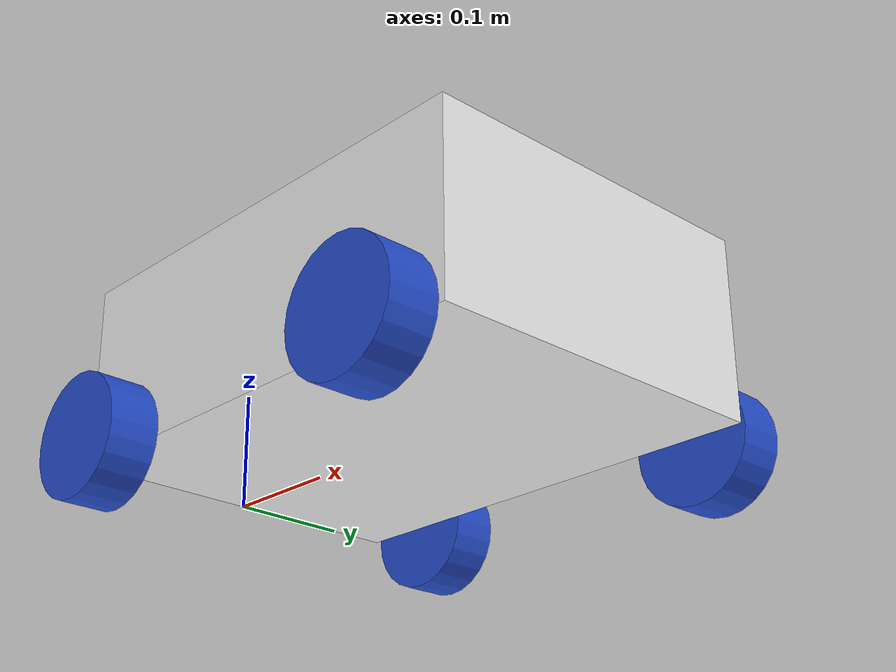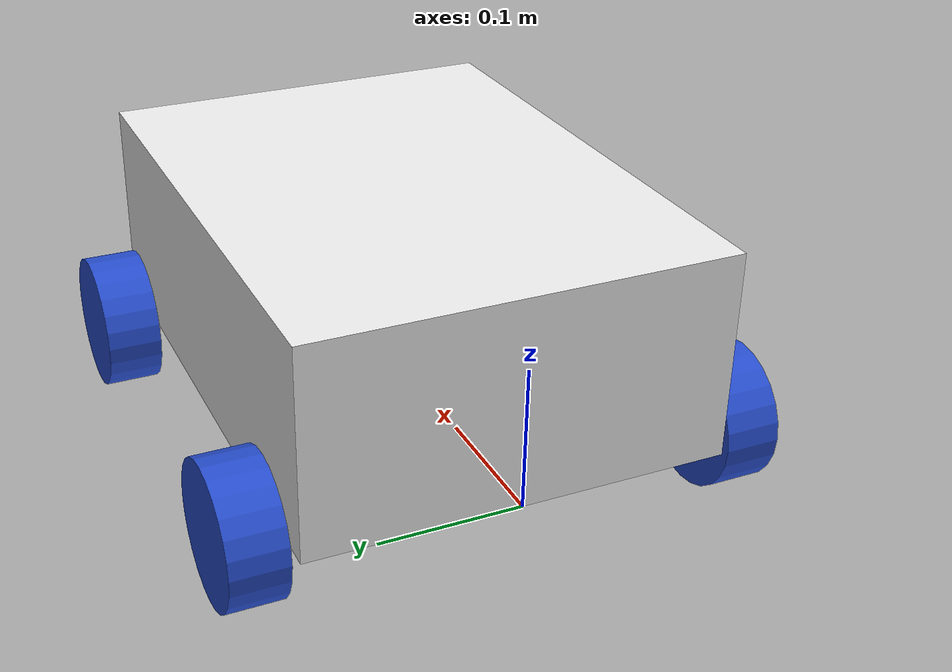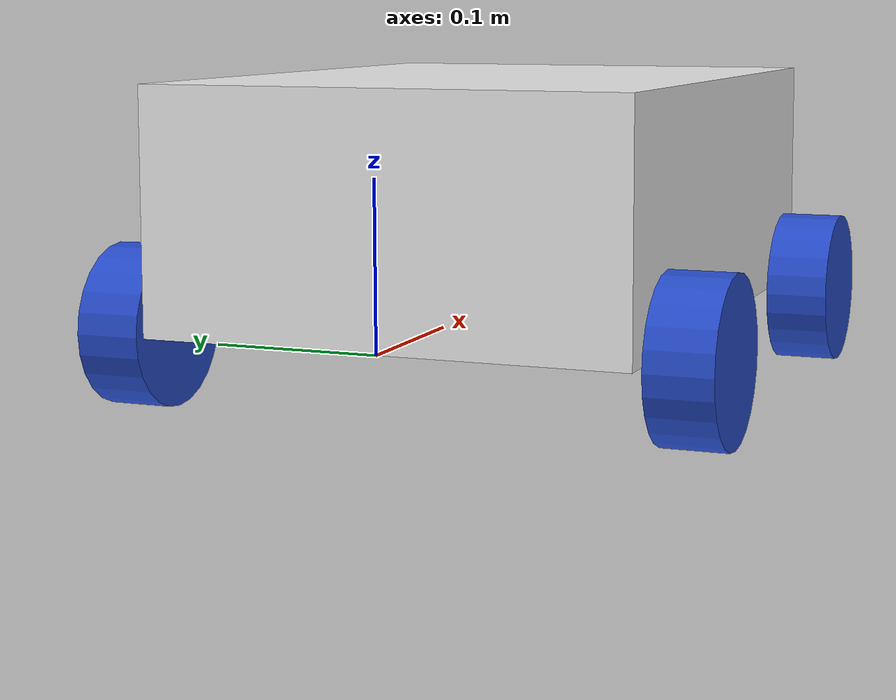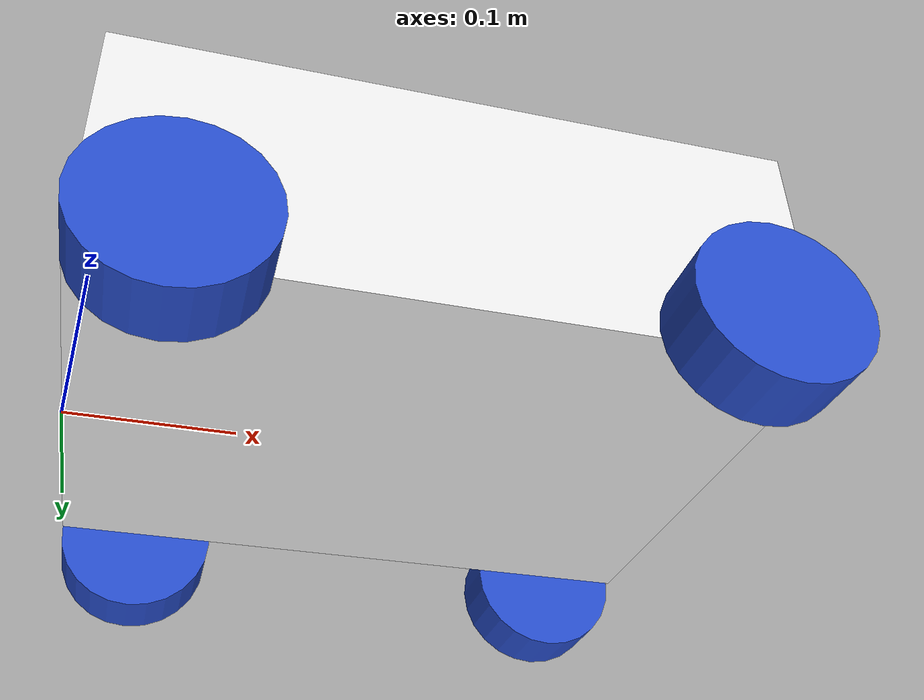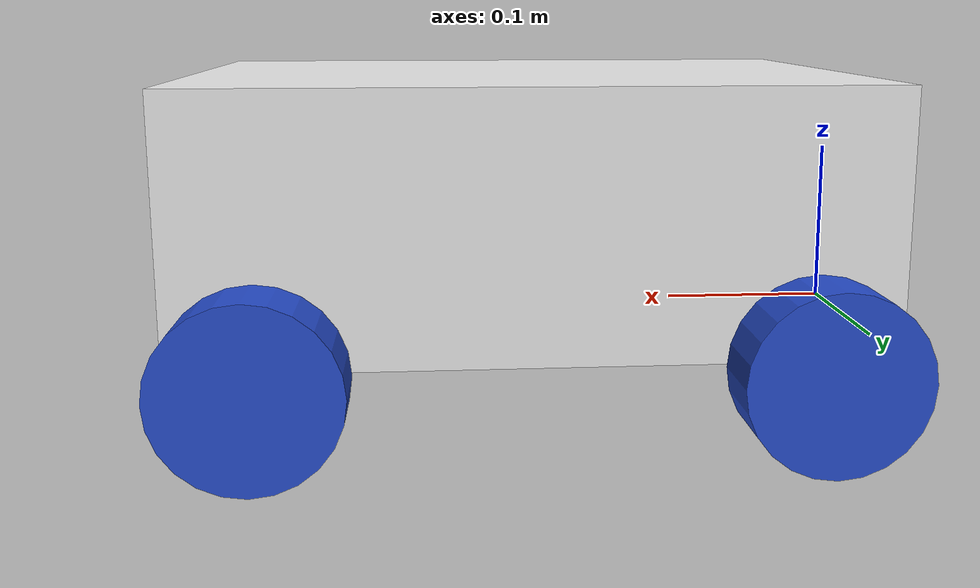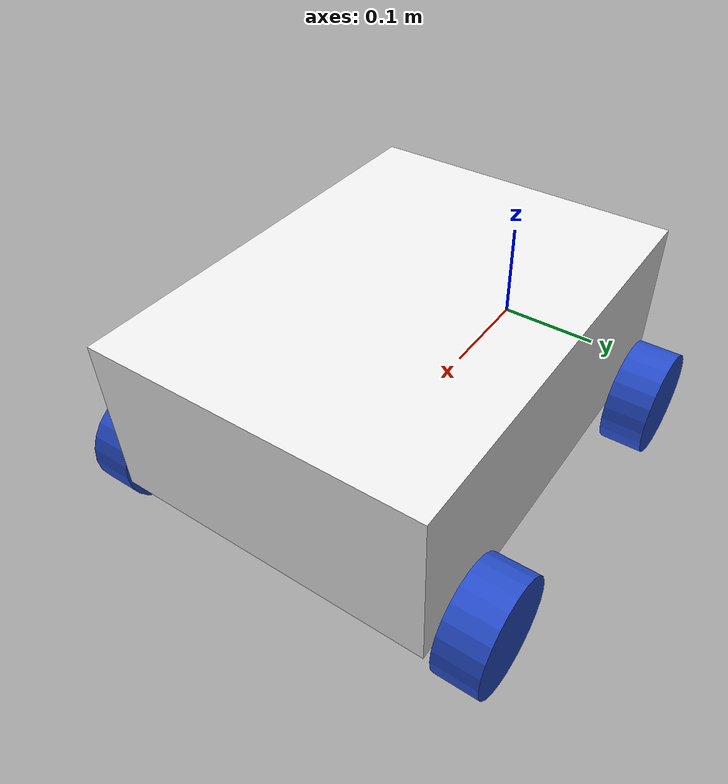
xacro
<?xml version="1.0"?>
<robot xmlns:xacro="http://www.ros.org/wiki/xacro" >

    <xacro:include filename="inertial_macros.xacro"/>

    <!-- BASE LINK -->

    <link name="base_link">

    </link>
      <!-- BASE_FOOTPRINT LINK -->

    <joint name="base_footprint_joint" type="fixed">
        <parent link="base_link"/>
        <child link="base_footprint"/>
        <origin xyz="0 0 0" rpy="0 0 0"/>
    </joint>

    <link name="base_footprint">
    </link>

    <!-- CHASSIS LINK -->

    <joint name="chassis_joint" type="fixed">
        <parent link="base_link"/>
        <child link="chassis"/>
        <origin xyz="0 0 0"/>
    </joint>

    <link name="chassis">
        <visual>
            <origin xyz="0.2 0 0.075"/>
            <geometry>
                <box size="0.4 0.3 0.15"/>
            </geometry>
            <material name="white"/>
        </visual>
        <collision>
            <origin xyz="0.2 0 0.075"/>
            <geometry>
                <box size="0.4 0.3 0.15"/>
            </geometry>
        </collision>
        <xacro:inertial_box mass="0.5" x="0.4" y="0.3" z="0.15">
            <origin xyz="0.2 0 0.075" rpy="0 0 0"/>
        </xacro:inertial_box>
    </link>

    <gazebo reference="chassis">
        <material>Gazebo/White</material>
    </gazebo>

    <!-- LEFT WHEEL LINK -->
    <!--back left wheel-->
    <joint name="bleft_wheel_joint" type="continuous">
        <parent link="base_link"/>
        <child link="bleft_wheel"/>
        <origin xyz="0.05 0.175 0" rpy="-${pi/2} 0 0" />
        <axis xyz="0 0 1"/>
    </joint>

    <link name="bleft_wheel">
        <visual>
            <geometry>
                <cylinder radius="0.05" length="0.04"/>
            </geometry>
            <material name="blue"/>
        </visual>
        <collision>
            <geometry>
                <cylinder radius="0.05" length="0.04"/>
            </geometry>
        </collision>
        <xacro:inertial_cylinder mass="0.1" length="0.04" radius="0.05">
            <origin xyz="0 0 0" rpy="0 0 0"/>
        </xacro:inertial_cylinder>
    </link>

    <gazebo reference="bleft_wheel">
        <material>Gazebo/Black</material>
        <mu1 value="0.001"/>
        <mu2 value="0.001"/>
    </gazebo>
    <!--rear left wheel-->
<joint name="rleft_wheel_joint" type="continuous">
        <parent link="base_link"/>
        <child link="rleft_wheel"/>
        <origin xyz="0.35 0.175 0" rpy="-${pi/2} 0 0" />
        <axis xyz="0 0 1"/>
    </joint>

    <link name="rleft_wheel">
        <visual>
            <geometry>
                <cylinder radius="0.05" length="0.04"/>
            </geometry>
            <material name="blue"/>
        </visual>
        <collision>
            <geometry>
                <cylinder radius="0.05" length="0.04"/>
            </geometry>
        </collision>
        <xacro:inertial_cylinder mass="0.1" length="0.04" radius="0.05">
            <origin xyz="0 0 0" rpy="0 0 0"/>
        </xacro:inertial_cylinder>
    </link>

    <gazebo reference="rleft_wheel">
        <material>Gazebo/Blue</material>
    </gazebo>

    <!-- RIGHT WHEEL LINK -->
    <!--back right wheel-->
    <joint name="bright_wheel_joint" type="continuous">
        <parent link="base_link"/>
        <child link="bright_wheel"/>
        <origin xyz=".05 -0.175 0" rpy="${pi/2} 0 0" />
        <axis xyz="0 0 -1"/>
    </joint>

    <link name="bright_wheel">
        <visual>
            <geometry>
                <cylinder radius="0.05" length="0.04"/>
            </geometry>
            <material name="blue"/>
        </visual>
        <collision>
            <geometry>
                <cylinder radius="0.05" length="0.04"/>
            </geometry>
        </collision>
        <xacro:inertial_cylinder mass="0.1" length="0.04" radius="0.05">
            <origin xyz="0 0 0" rpy="0 0 0"/>
        </xacro:inertial_cylinder>
    </link>

    <gazebo reference="bright_wheel">
        <material>Gazebo/Black</material>
        <mu1 value="0.001"/>
        <mu2 value="0.001"/>
    </gazebo>
    <!--rear right wheel-->
    <joint name="rright_wheel_joint" type="continuous">
        <parent link="base_link"/>
        <child link="rright_wheel"/>
        <origin xyz=".35 -0.175 0" rpy="${pi/2} 0 0" />
        <axis xyz="0 0 -1"/>
    </joint>

    <link name="rright_wheel">
        <visual>
            <geometry>
                <cylinder radius="0.05" length="0.04"/>
            </geometry>
            <material name="blue"/>
        </visual>
        <collision>
            <geometry>
                <cylinder radius="0.05" length="0.04"/>
            </geometry>
        </collision>
        <xacro:inertial_cylinder mass="0.1" length="0.04" radius="0.05">
            <origin xyz="0 0 0" rpy="0 0 0"/>
        </xacro:inertial_cylinder>
    </link>

    <gazebo reference="rright_wheel">
        <material>Gazebo/Blue</material>
    </gazebo>

</robot>

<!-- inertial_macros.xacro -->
<robot xmlns:xacro="http://www.ros.org/wiki/xacro" >

    <!-- Specify some standard inertial calculations https://en.wikipedia.org/wiki/List_of_moments_of_inertia -->
    <!-- These make use of xacro's mathematical functionality -->

    <xacro:macro name="inertial_sphere" params="mass radius *origin">
        <inertial>
            <xacro:insert_block name="origin"/>
            <mass value="${mass}" />
            <inertia ixx="${(2/5) * mass * (radius*radius)}" ixy="0.0" ixz="0.0"
                    iyy="${(2/5) * mass * (radius*radius)}" iyz="0.0"
                    izz="${(2/5) * mass * (radius*radius)}" />
        </inertial>
    </xacro:macro>

    <xacro:macro name="inertial_box" params="mass x y z *origin">
        <inertial>
            <xacro:insert_block name="origin"/>
            <mass value="10" />
            <inertia ixx="${(1/12) * mass * (y*y+z*z)}" ixy="0.0" ixz="0.0"
                    iyy="${(1/12) * mass * (x*x+z*z)}" iyz="0.0"
                    izz="${(1/12) * mass * (x*x+y*y)}" />
        </inertial>
    </xacro:macro>

    <xacro:macro name="inertial_cylinder" params="mass length radius *origin">
        <inertial>
            <xacro:insert_block name="origin"/>
            <mass value="${mass}" />
            <inertia ixx="${(1/12) * mass * (3*radius*radius + length*length)}" ixy="0.0" ixz="0.0"
                    iyy="${(1/12) * mass * (3*radius*radius + length*length)}" iyz="0.0"
                    izz="${(1/2) * mass * (radius*radius)}" />
        </inertial>
    </xacro:macro>

</robot>
